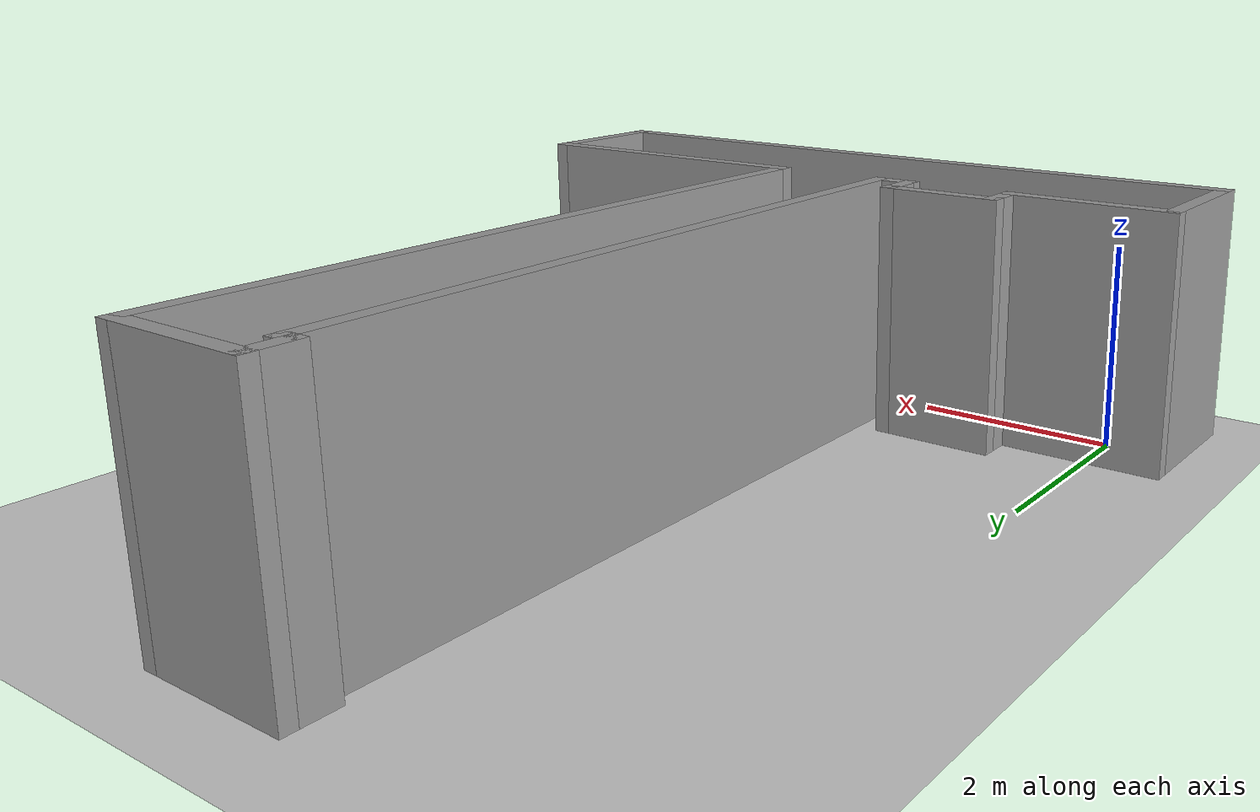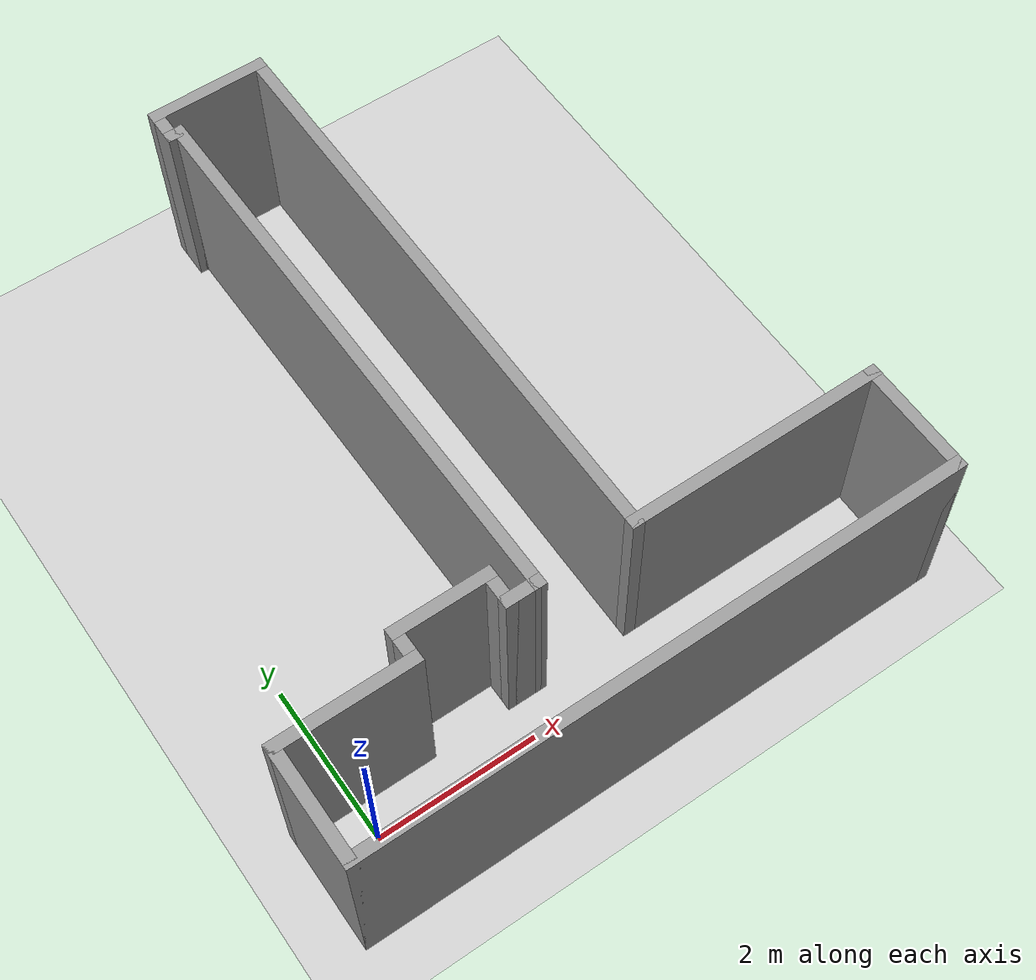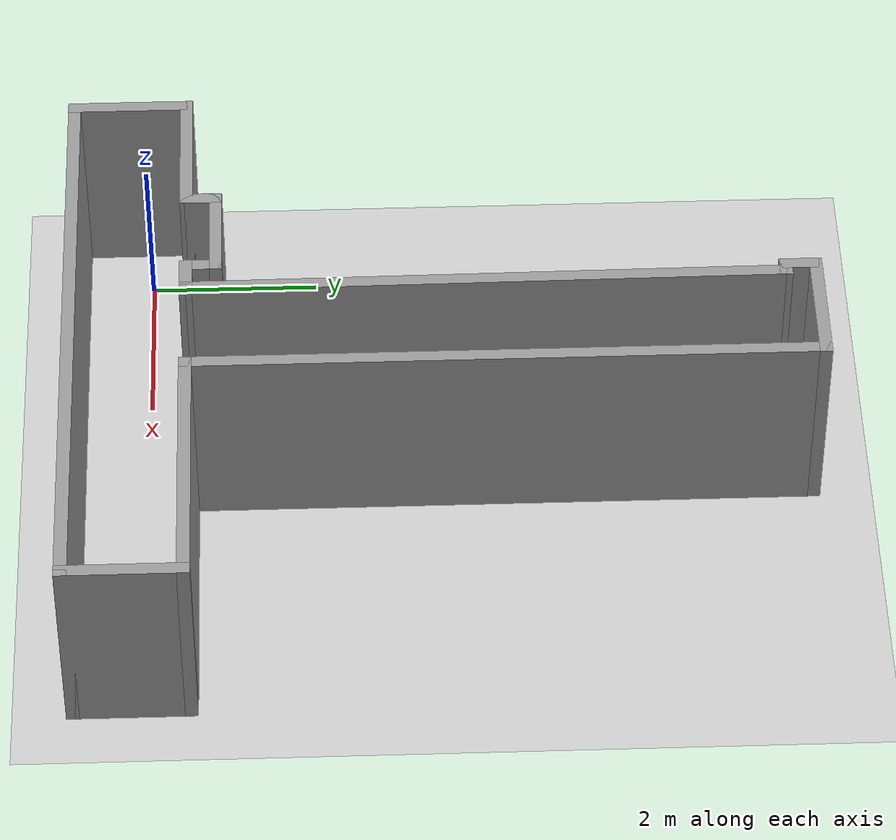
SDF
<sdf version="1.5">
 <world name="default">
  <light name="sun" type="directional">
   <pose>0 0 10 0 -0 0</pose>
   <diffuse>0.8 0.8 0.8 1</diffuse>
   <specular>0.2 0.2 0.2 1</specular>
   <attenuation>
    <range>1000</range>
    <constant>0.9</constant>
    <linear>0.01</linear>
    <quadratic>0.001</quadratic>
   </attenuation>
   <direction>-0.5 0.1 -0.9</direction>
  </light>
  <model name="ground_plane">
   <static>1</static>
   <link name="link">
    <collision name="collision">
     <geometry><plane><normal>0 0 1</normal><size>100 100</size></plane></geometry>
     <surface><friction><ode><mu>100</mu><mu2>50</mu2></ode></friction></surface>
    </collision>
    <visual name="visual">
     <cast_shadows>0</cast_shadows>
     <geometry><plane><normal>0 0 1</normal><size>100 100</size></plane></geometry>
     <material>
      <script><uri>file://media/materials/scripts/gazebo.material</uri><name>Gazebo/Grey</name></script>
     </material>
    </visual>
   </link>
  </model>
  <physics name="default_physics" default="0" type="ode">
   <max_step_size>0.001</max_step_size>
   <real_time_factor>1</real_time_factor>
   <real_time_update_rate>1000</real_time_update_rate>
   <gravity>0 0 -9.8</gravity>
   <magnetic_field>6e-06 2.3e-05 -4.2e-05</magnetic_field>
  </physics>
  <scene><ambient>0.4 0.4 0.4 1</ambient><background>0.7 0.7 0.7 1</background><shadows>1</shadows></scene>
  <spherical_coordinates>
   <surface_model>EARTH_WGS84</surface_model>
   <latitude_deg>0</latitude_deg>
   <longitude_deg>0</longitude_deg>
   <elevation>0</elevation>
   <heading_deg>0</heading_deg>
  </spherical_coordinates>
  <model name="Verdieping">
   <pose>3 3.49706 0 0 -0 0</pose>
   <link name="Wall_0">
    <collision name="Wall_0_Collision">
     <geometry><box><size>0.5 0.15 2.5</size></box></geometry>
     <pose>0 0 1.25 0 -0 0</pose>
    </collision>
    <visual name="Wall_0_Visual">
     <pose>0 0 1.25 0 -0 0</pose>
     <geometry><box><size>0.5 0.15 2.5</size></box></geometry>
     <material>
      <script><uri>file://media/materials/scripts/gazebo.material</uri><name>Gazebo/Grey</name></script>
      <ambient>1 1 1 1</ambient>
     </material>
    </visual>
    <pose>-0.8 -3 0 0 -0 3.14159</pose>
   </link>
   <link name="Wall_1">
    <collision name="Wall_1_Collision">
     <geometry><box><size>0.5 0.15 2.5</size></box></geometry>
     <pose>0 0 1.25 0 -0 0</pose>
    </collision>
    <visual name="Wall_1_Visual">
     <pose>0 0 1.25 0 -0 0</pose>
     <geometry><box><size>0.5 0.15 2.5</size></box></geometry>
     <material>
      <script><uri>file://media/materials/scripts/gazebo.material</uri><name>Gazebo/Grey</name></script>
      <ambient>1 1 1 1</ambient>
     </material>
    </visual>
    <pose>-0.975 -2.825 0 0 -0 1.5708</pose>
   </link>
   <link name="Wall_10">
    <collision name="Wall_10_Collision">
     <geometry><box><size>1.5 0.15 2.5</size></box></geometry>
     <pose>0 0 1.25 0 -0 0</pose>
    </collision>
    <visual name="Wall_10_Visual">
     <pose>0 0 1.25 0 -0 0</pose>
     <geometry><box><size>1.5 0.15 2.5</size></box></geometry>
     <material>
      <script><uri>file://media/materials/scripts/gazebo.material</uri><name>Gazebo/Grey</name></script>
      <ambient>1 1 1 1</ambient>
     </material>
    </visual>
    <pose>-0.1 4.35 0 0 -0 3.14159</pose>
   </link>
   <link name="Wall_11">
    <collision name="Wall_11_Collision">
     <geometry><box><size>0.5 0.15 2.5</size></box></geometry>
     <pose>0 0 1.25 0 -0 0</pose>
    </collision>
    <visual name="Wall_11_Visual">
     <pose>0 0 1.25 0 -0 0</pose>
     <geometry><box><size>0.5 0.15 2.5</size></box></geometry>
     <material>
      <script><uri>file://media/materials/scripts/gazebo.material</uri><name>Gazebo/Grey</name></script>
      <ambient>1 1 1 1</ambient>
     </material>
    </visual>
    <pose>-0.775 4.175 0 0 0 -1.5708</pose>
   </link>
   <link name="Wall_12">
    <collision name="Wall_12_Collision">
     <geometry><box><size>0.25 0.15 2.5</size></box></geometry>
     <pose>0 0 1.25 0 -0 0</pose>
    </collision>
    <visual name="Wall_12_Visual">
     <pose>0 0 1.25 0 -0 0</pose>
     <geometry><box><size>0.25 0.15 2.5</size></box></geometry>
     <material>
      <script><uri>file://media/materials/scripts/gazebo.material</uri><name>Gazebo/Grey</name></script>
      <ambient>1 1 1 1</ambient>
     </material>
    </visual>
    <pose>-0.725 4 0 0 -0 0</pose>
   </link>
   <link name="Wall_13">
    <collision name="Wall_13_Collision">
     <geometry><box><size>7.15018 0.15 2.5</size></box></geometry>
     <pose>0 0 1.25 0 -0 0</pose>
    </collision>
    <visual name="Wall_13_Visual">
     <pose>0 0 1.25 0 -0 0</pose>
     <geometry><box><size>7.15018 0.15 2.5</size></box></geometry>
     <material>
      <script><uri>file://media/materials/scripts/gazebo.material</uri><name>Gazebo/Grey</name></script>
      <ambient>1 1 1 1</ambient>
     </material>
    </visual>
    <pose>-0.65 0.5 0 0 0 -1.56365</pose>
   </link>
   <link name="Wall_2">
    <collision name="Wall_2_Collision">
     <geometry><box><size>1.25 0.15 2.5</size></box></geometry>
     <pose>0 0 1.25 0 -0 0</pose>
    </collision>
    <visual name="Wall_2_Visual">
     <pose>0 0 1.25 0 -0 0</pose>
     <geometry><box><size>1.25 0.15 2.5</size></box></geometry>
     <material>
      <script><uri>file://media/materials/scripts/gazebo.material</uri><name>Gazebo/Grey</name></script>
      <ambient>1 1 1 1</ambient>
     </material>
    </visual>
    <pose>-1.525 -2.65 0 0 -0 3.14159</pose>
   </link>
   <link name="Wall_3">
    <collision name="Wall_3_Collision">
     <geometry><box><size>0.5 0.15 2.5</size></box></geometry>
     <pose>0 0 1.25 0 -0 0</pose>
    </collision>
    <visual name="Wall_3_Visual">
     <pose>0 0 1.25 0 -0 0</pose>
     <geometry><box><size>0.5 0.15 2.5</size></box></geometry>
     <material>
      <script><uri>file://media/materials/scripts/gazebo.material</uri><name>Gazebo/Grey</name></script>
      <ambient>1 1 1 1</ambient>
     </material>
    </visual>
    <pose>-2.075 -2.825 0 0 0 -1.5708</pose>
   </link>
   <link name="Wall_4">
    <collision name="Wall_4_Collision">
     <geometry><box><size>1.75 0.15 2.5</size></box></geometry>
     <pose>0 0 1.25 0 -0 0</pose>
    </collision>
    <visual name="Wall_4_Visual">
     <pose>0 0 1.25 0 -0 0</pose>
     <geometry><box><size>1.75 0.15 2.5</size></box></geometry>
     <material>
      <script><uri>file://media/materials/scripts/gazebo.material</uri><name>Gazebo/Grey</name></script>
      <ambient>1 1 1 1</ambient>
     </material>
    </visual>
    <pose>-2.875 -3 0 0 -0 3.14159</pose>
   </link>
   <link name="Wall_5">
    <collision name="Wall_5_Collision">
     <geometry><box><size>1.5 0.15 2.5</size></box></geometry>
     <pose>0 0 1.25 0 -0 0</pose>
    </collision>
    <visual name="Wall_5_Visual">
     <pose>0 0 1.25 0 -0 0</pose>
     <geometry><box><size>1.5 0.15 2.5</size></box></geometry>
     <material>
      <script><uri>file://media/materials/scripts/gazebo.material</uri><name>Gazebo/Grey</name></script>
      <ambient>1 1 1 1</ambient>
     </material>
    </visual>
    <pose>-3.675 -3.675 0 0 0 -1.5708</pose>
   </link>
   <link name="Wall_6">
    <collision name="Wall_6_Collision">
     <geometry><box><size>7.5 0.15 2.5</size></box></geometry>
     <pose>0 0 1.25 0 -0 0</pose>
    </collision>
    <visual name="Wall_6_Visual">
     <pose>0 0 1.25 0 -0 0</pose>
     <geometry><box><size>7.5 0.15 2.5</size></box></geometry>
     <material>
      <script><uri>file://media/materials/scripts/gazebo.material</uri><name>Gazebo/Grey</name></script>
      <ambient>1 1 1 1</ambient>
     </material>
    </visual>
    <pose>-0 -4.35 0 0 -0 0</pose>
   </link>
   <link name="Wall_7">
    <collision name="Wall_7_Collision">
     <geometry><box><size>1.5 0.15 2.5</size></box></geometry>
     <pose>0 0 1.25 0 -0 0</pose>
    </collision>
    <visual name="Wall_7_Visual">
     <pose>0 0 1.25 0 -0 0</pose>
     <geometry><box><size>1.5 0.15 2.5</size></box></geometry>
     <material>
      <script><uri>file://media/materials/scripts/gazebo.material</uri><name>Gazebo/Grey</name></script>
      <ambient>1 1 1 1</ambient>
     </material>
    </visual>
    <pose>3.675 -3.675 0 0 -0 1.5708</pose>
   </link>
   <link name="Wall_8">
    <collision name="Wall_8_Collision">
     <geometry><box><size>3.25 0.15 2.5</size></box></geometry>
     <pose>0 0 1.25 0 -0 0</pose>
    </collision>
    <visual name="Wall_8_Visual">
     <pose>0 0 1.25 0 -0 0</pose>
     <geometry><box><size>3.25 0.15 2.5</size></box></geometry>
     <material>
      <script><uri>file://media/materials/scripts/gazebo.material</uri><name>Gazebo/Grey</name></script>
      <ambient>1 1 1 1</ambient>
     </material>
    </visual>
    <pose>2.125 -3 0 0 -0 3.14159</pose>
   </link>
   <link name="Wall_9">
    <collision name="Wall_9_Collision">
     <geometry><box><size>7.5 0.15 2.5</size></box></geometry>
     <pose>0 0 1.25 0 -0 0</pose>
    </collision>
    <visual name="Wall_9_Visual">
     <pose>0 0 1.25 0 -0 0</pose>
     <geometry><box><size>7.5 0.15 2.5</size></box></geometry>
     <material>
      <script><uri>file://media/materials/scripts/gazebo.material</uri><name>Gazebo/Grey</name></script>
      <ambient>1 1 1 1</ambient>
     </material>
    </visual>
    <pose>0.575 0.675 0 0 -0 1.5708</pose>
   </link>
   <static>1</static>
  </model>
 </world>
</sdf>
